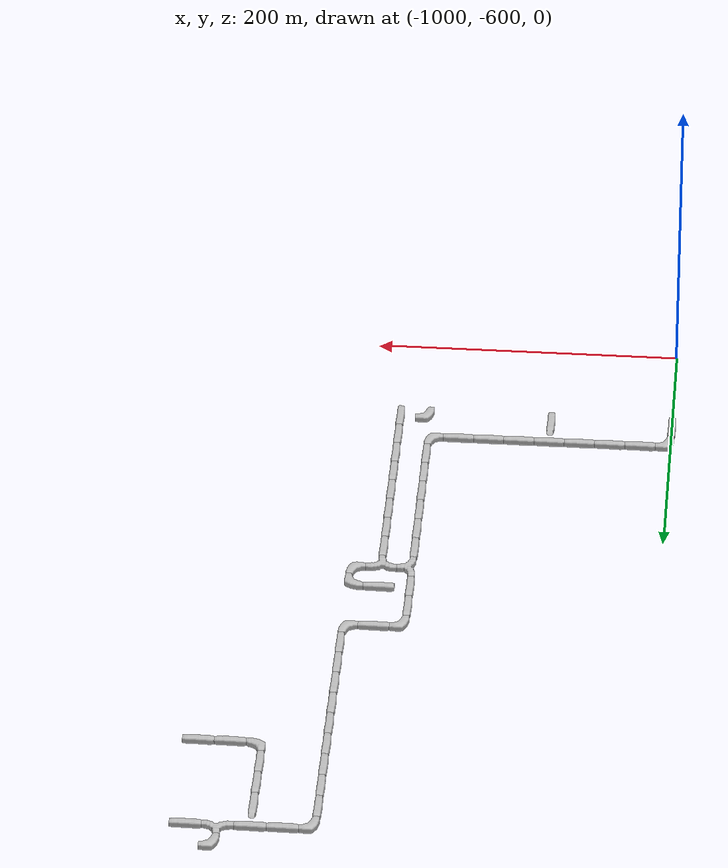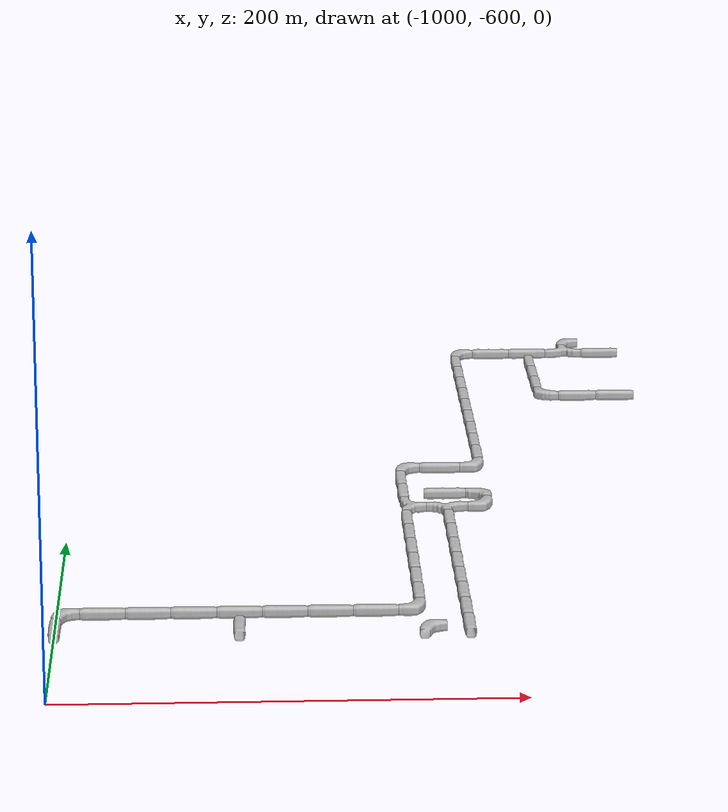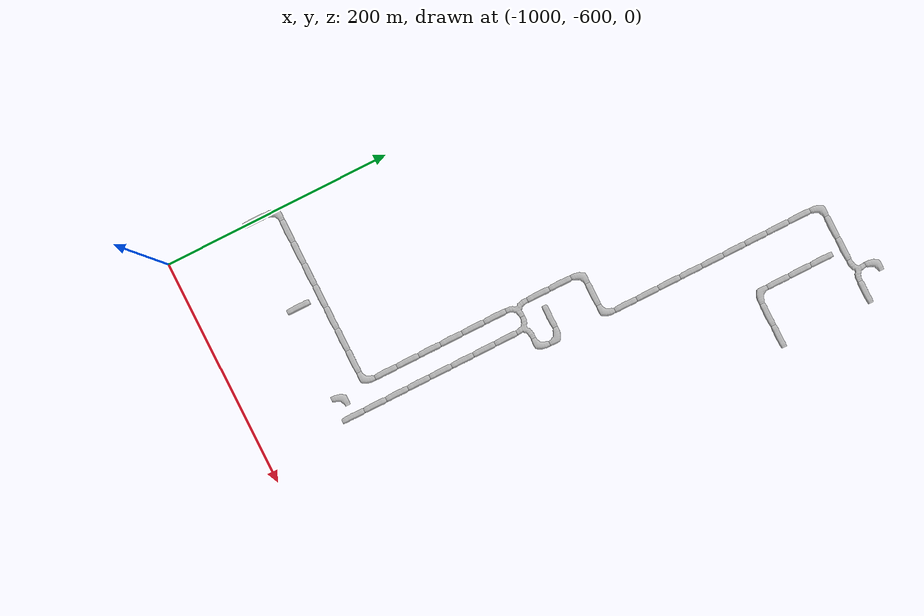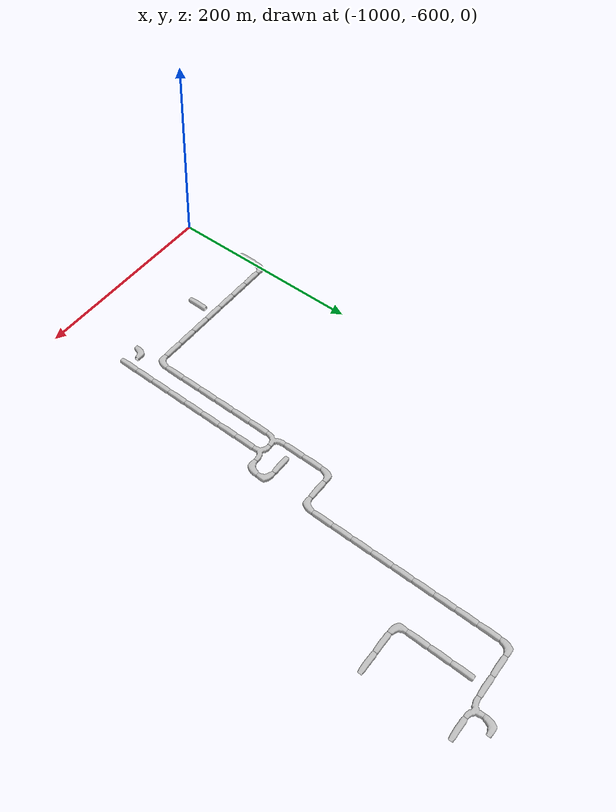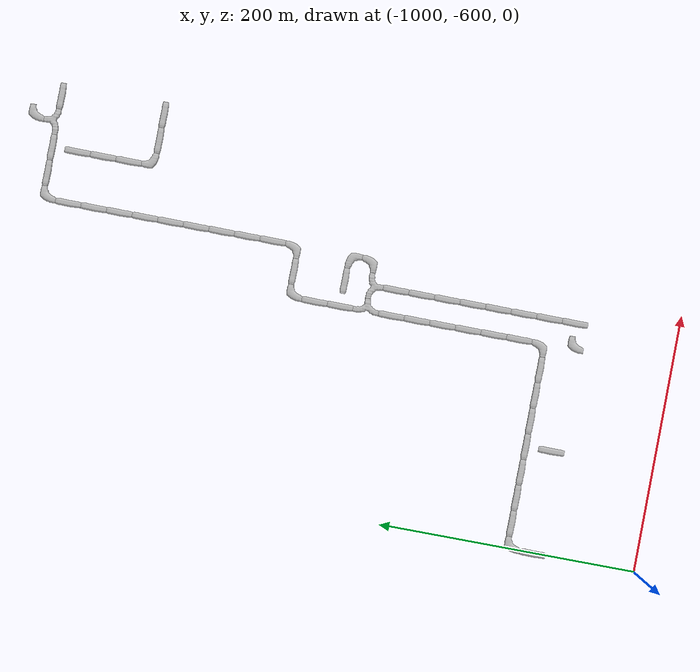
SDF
<sdf version="1.6">
 <world name="cave_32000">
  <include>
   <static>true</static>
   <name>cave_-36_-5</name>
   <pose>-720 -100 0 0 0 1.5707963267948966</pose>
   <uri>model://cave_straight_20m</uri>
  </include>
  <include>
   <static>true</static>
   <name>cave_-37_-5</name>
   <pose>-740 -100 0 0 0 0.0</pose>
   <uri>model://cave_3way_20m</uri>
  </include>
  <include>
   <static>true</static>
   <name>cave_-38_-5</name>
   <pose>-760 -100 0 0 0 1.5707963267948966</pose>
   <uri>model://cave_straight_20m</uri>
  </include>
  <include>
   <static>true</static>
   <name>cave_-39_-5</name>
   <pose>-780 -100 0 0 0 1.5707963267948966</pose>
   <uri>model://cave_straight_20m</uri>
  </include>
  <include>
   <static>true</static>
   <name>cave_-40_-5</name>
   <pose>-800 -100 0 0 0 -1.5707963267948966</pose>
   <uri>model://cave_L_20m</uri>
  </include>
  <include>
   <static>true</static>
   <name>cave_-40_-6</name>
   <pose>-800 -120 0 0 0 0.0</pose>
   <uri>model://cave_straight_20m</uri>
  </include>
  <include>
   <static>true</static>
   <name>cave_-40_-7</name>
   <pose>-800 -140 0 0 0 0.0</pose>
   <uri>model://cave_straight_20m</uri>
  </include>
  <include>
   <static>true</static>
   <name>cave_-40_-8</name>
   <pose>-800 -160 0 0 0 0.0</pose>
   <uri>model://cave_straight_20m</uri>
  </include>
  <include>
   <static>true</static>
   <name>cave_-40_-9</name>
   <pose>-800 -180 0 0 0 0.0</pose>
   <uri>model://cave_straight_20m</uri>
  </include>
  <include>
   <static>true</static>
   <name>cave_-40_-10</name>
   <pose>-800 -200 0 0 0 0.0</pose>
   <uri>model://cave_straight_20m</uri>
  </include>
  <include>
   <static>true</static>
   <name>cave_-40_-11</name>
   <pose>-800 -220 0 0 0 0.0</pose>
   <uri>model://cave_straight_20m</uri>
  </include>
  <include>
   <static>true</static>
   <name>cave_-40_-12</name>
   <pose>-800 -240 0 0 0 0.0</pose>
   <uri>model://cave_straight_20m</uri>
  </include>
  <include>
   <static>true</static>
   <name>cave_-40_-13</name>
   <pose>-800 -260 0 0 0 0.0</pose>
   <uri>model://cave_straight_20m</uri>
  </include>
  <include>
   <static>true</static>
   <name>cave_-40_-14</name>
   <pose>-800 -280 0 0 0 0.0</pose>
   <uri>model://cave_straight_20m</uri>
  </include>
  <include>
   <static>true</static>
   <name>cave_-40_-15</name>
   <pose>-800 -300 0 0 0 1.5707963267948966</pose>
   <uri>model://cave_L_20m</uri>
  </include>
  <include>
   <static>true</static>
   <name>cave_-41_-15</name>
   <pose>-820 -300 0 0 0 1.5707963267948966</pose>
   <uri>model://cave_straight_20m</uri>
  </include>
  <include>
   <static>true</static>
   <name>cave_-42_-15</name>
   <pose>-840 -300 0 0 0 -1.5707963267948966</pose>
   <uri>model://cave_L_20m</uri>
  </include>
  <include>
   <static>true</static>
   <name>cave_-42_-16</name>
   <pose>-840 -320 0 0 0 0.0</pose>
   <uri>model://cave_straight_20m</uri>
  </include>
  <include>
   <static>true</static>
   <name>cave_-42_-17</name>
   <pose>-840 -340 0 0 0 0.0</pose>
   <uri>model://cave_straight_20m</uri>
  </include>
  <include>
   <static>true</static>
   <name>cave_-42_-18</name>
   <pose>-840 -360 0 0 0 -1.5707963267948966</pose>
   <uri>model://cave_3way_20m</uri>
  </include>
  <include>
   <static>true</static>
   <name>cave_-41_-18</name>
   <pose>-820 -360 0 0 0 3.141592653589793</pose>
   <uri>model://cave_3way_20m</uri>
  </include>
  <include>
   <static>true</static>
   <name>cave_-40_-18</name>
   <pose>-800 -360 0 0 0 1.5707963267948966</pose>
   <uri>model://cave_L_20m</uri>
  </include>
  <include>
   <static>true</static>
   <name>cave_-40_-17</name>
   <pose>-800 -340 0 0 0 3.141592653589793</pose>
   <uri>model://cave_L_20m</uri>
  </include>
  <include>
   <static>true</static>
   <name>cave_-41_-17</name>
   <pose>-820 -340 0 0 0 1.5707963267948966</pose>
   <uri>model://cave_straight_20m</uri>
  </include>
  <include>
   <static>true</static>
   <name>cave_-41_-19</name>
   <pose>-820 -380 0 0 0 0.0</pose>
   <uri>model://cave_straight_20m</uri>
  </include>
  <include>
   <static>true</static>
   <name>cave_-41_-20</name>
   <pose>-820 -400 0 0 0 0.0</pose>
   <uri>model://cave_straight_20m</uri>
  </include>
  <include>
   <static>true</static>
   <name>cave_-41_-21</name>
   <pose>-820 -420 0 0 0 0.0</pose>
   <uri>model://cave_straight_20m</uri>
  </include>
  <include>
   <static>true</static>
   <name>cave_-41_-22</name>
   <pose>-820 -440 0 0 0 0.0</pose>
   <uri>model://cave_straight_20m</uri>
  </include>
  <include>
   <static>true</static>
   <name>cave_-41_-23</name>
   <pose>-820 -460 0 0 0 0.0</pose>
   <uri>model://cave_straight_20m</uri>
  </include>
  <include>
   <static>true</static>
   <name>cave_-41_-24</name>
   <pose>-820 -480 0 0 0 0.0</pose>
   <uri>model://cave_straight_20m</uri>
  </include>
  <include>
   <static>true</static>
   <name>cave_-41_-25</name>
   <pose>-820 -500 0 0 0 0.0</pose>
   <uri>model://cave_straight_20m</uri>
  </include>
  <include>
   <static>true</static>
   <name>cave_-41_-26</name>
   <pose>-820 -520 0 0 0 0.0</pose>
   <uri>model://cave_straight_20m</uri>
  </include>
  <include>
   <static>true</static>
   <name>cave_-36_-9</name>
   <pose>-720 -180 0 0 0 1.5707963267948966</pose>
   <uri>model://cave_straight_20m</uri>
  </include>
  <include>
   <static>true</static>
   <name>cave_-37_-9</name>
   <pose>-740 -180 0 0 0 1.5707963267948966</pose>
   <uri>model://cave_straight_20m</uri>
  </include>
  <include>
   <static>true</static>
   <name>cave_-38_-9</name>
   <pose>-760 -180 0 0 0 0.0</pose>
   <uri>model://cave_L_20m</uri>
  </include>
  <include>
   <static>true</static>
   <name>cave_-38_-8</name>
   <pose>-760 -160 0 0 0 0.0</pose>
   <uri>model://cave_straight_20m</uri>
  </include>
  <include>
   <static>true</static>
   <name>cave_-38_-7</name>
   <pose>-760 -140 0 0 0 0.0</pose>
   <uri>model://cave_straight_20m</uri>
  </include>
  <include>
   <static>true</static>
   <name>cave_-38_-6</name>
   <pose>-760 -120 0 0 0 0.0</pose>
   <uri>model://cave_straight_20m</uri>
  </include>
  <include>
   <static>true</static>
   <name>cave_-42_-26</name>
   <pose>-840 -520 0 0 0 -1.5707963267948966</pose>
   <uri>model://cave_L_20m</uri>
  </include>
  <include>
   <static>true</static>
   <name>cave_-42_-19</name>
   <pose>-840 -380 0 0 0 0.0</pose>
   <uri>model://cave_straight_20m</uri>
  </include>
  <include>
   <static>true</static>
   <name>cave_-42_-20</name>
   <pose>-840 -400 0 0 0 0.0</pose>
   <uri>model://cave_straight_20m</uri>
  </include>
  <include>
   <static>true</static>
   <name>cave_-42_-21</name>
   <pose>-840 -420 0 0 0 0.0</pose>
   <uri>model://cave_straight_20m</uri>
  </include>
  <include>
   <static>true</static>
   <name>cave_-42_-22</name>
   <pose>-840 -440 0 0 0 0.0</pose>
   <uri>model://cave_straight_20m</uri>
  </include>
  <include>
   <static>true</static>
   <name>cave_-42_-23</name>
   <pose>-840 -460 0 0 0 0.0</pose>
   <uri>model://cave_straight_20m</uri>
  </include>
  <include>
   <static>true</static>
   <name>cave_-42_-24</name>
   <pose>-840 -480 0 0 0 0.0</pose>
   <uri>model://cave_straight_20m</uri>
  </include>
  <include>
   <static>true</static>
   <name>cave_-42_-25</name>
   <pose>-840 -500 0 0 0 1.5707963267948966</pose>
   <uri>model://cave_L_20m</uri>
  </include>
  <include>
   <static>true</static>
   <name>cave_-43_-25</name>
   <pose>-860 -500 0 0 0 1.5707963267948966</pose>
   <uri>model://cave_straight_20m</uri>
  </include>
  <include>
   <static>true</static>
   <name>cave_-44_-25</name>
   <pose>-880 -500 0 0 0 1.5707963267948966</pose>
   <uri>model://cave_straight_20m</uri>
  </include>
  <include>
   <static>true</static>
   <name>cave_-45_-25</name>
   <pose>-900 -500 0 0 0 1.5707963267948966</pose>
   <uri>model://cave_straight_20m</uri>
  </include>
  <include>
   <static>true</static>
   <name>cave_-46_-25</name>
   <pose>-920 -500 0 0 0 1.5707963267948966</pose>
   <uri>model://cave_straight_20m</uri>
  </include>
  <include>
   <static>true</static>
   <name>cave_-47_-25</name>
   <pose>-940 -500 0 0 0 1.5707963267948966</pose>
   <uri>model://cave_straight_20m</uri>
  </include>
  <include>
   <static>true</static>
   <name>cave_-48_-25</name>
   <pose>-960 -500 0 0 0 1.5707963267948966</pose>
   <uri>model://cave_straight_20m</uri>
  </include>
  <include>
   <static>true</static>
   <name>cave_-49_-25</name>
   <pose>-980 -500 0 0 0 1.5707963267948966</pose>
   <uri>model://cave_straight_20m</uri>
  </include>
  <include>
   <static>true</static>
   <name>cave_-50_-25</name>
   <pose>-1000 -500 0 0 0 -1.5707963267948966</pose>
   <uri>model://cave_L_20m</uri>
  </include>
  <include>
   <static>true</static>
   <name>cave_-50_-26</name>
   <pose>-1000 -520 0 0 0 0.0</pose>
   <uri>model://cave_straight_20m</uri>
  </include>
  <include>
   <static>true</static>
   <name>cave_-46_-26</name>
   <pose>-920 -520 0 0 0 0.0</pose>
   <uri>model://cave_straight_20m</uri>
  </include>
  <include>
   <static>true</static>
   <name>cave_-37_-4</name>
   <pose>-740 -80 0 0 0 -1.5707963267948966</pose>
   <uri>model://cave_L_20m</uri>
  </include>
 </world>
</sdf>
